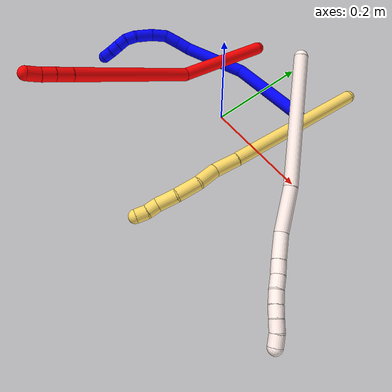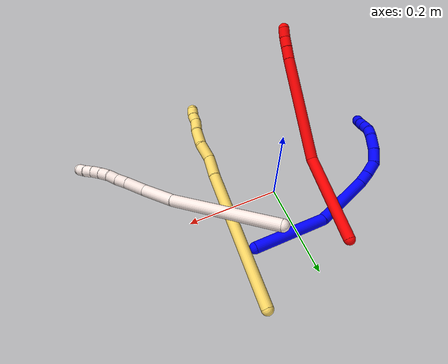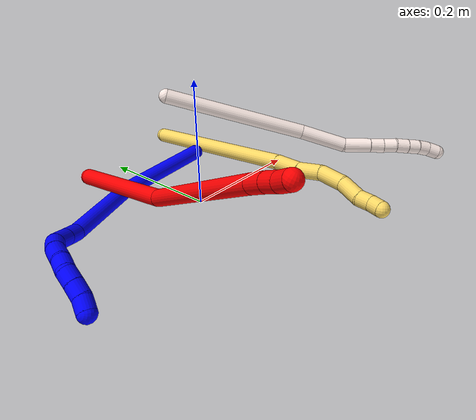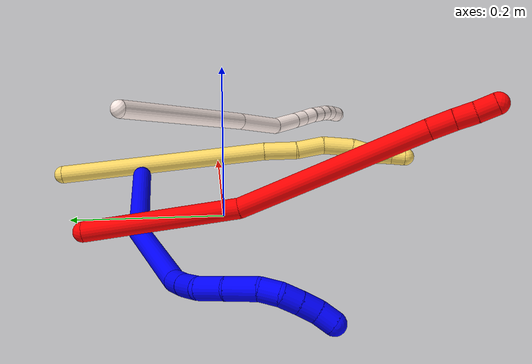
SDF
<sdf version="1.7">
 <world name="default">
  <model name="1">
   <static>0</static>
   <link name="1">
    <collision name="collision-cylinder-e_1_1_4">
     <pose>-0.038945 0.006561 0.07103 -0.092112 -0.499745 0.023523</pose>
     <geometry><cylinder><radius>0.0125</radius><length>0.162543</length></cylinder></geometry>
     <surface>
      <friction><ode><mu>1.16</mu><mu2>1.16</mu2><slip1>0</slip1><slip2>0</slip2></ode></friction>
      <contact><ode><kp>1e+06</kp><kd>1</kd><max_vel>0</max_vel><min_depth>0.001</min_depth></ode></contact>
     </surface>
    </collision>
    <visual name="visual-cylinder-e_1_1_4">
     <pose>-0.038945 0.006561 0.07103 -0.092112 -0.499745 0.023523</pose>
     <geometry><cylinder><radius>0.0125</radius><length>0.162543</length></cylinder></geometry>
     <material><ambient>0 0 1 1</ambient></material>
    </visual>
    <collision name="collision-cylinder-e_2_4_5">
     <pose>-0.108729 -0.003254 0.197471 0.287374 -0.490258 -0.072357</pose>
     <geometry><cylinder><radius>0.0125</radius><length>0.130991</length></cylinder></geometry>
     <surface>
      <friction><ode><mu>1.16</mu><mu2>1.16</mu2><slip1>0</slip1><slip2>0</slip2></ode></friction>
      <contact><ode><kp>1e+06</kp><kd>1</kd><max_vel>0</max_vel><min_depth>0.001</min_depth></ode></contact>
     </surface>
    </collision>
    <visual name="visual-cylinder-e_2_4_5">
     <pose>-0.108729 -0.003254 0.197471 0.287374 -0.490258 -0.072357</pose>
     <geometry><cylinder><radius>0.0125</radius><length>0.130991</length></cylinder></geometry>
     <material><ambient>0 0 1 1</ambient></material>
    </visual>
    <collision name="collision-cylinder-e_3_5_6">
     <pose>-0.1423 -0.024518 0.265011 0.382959 -0.205965 -0.040064</pose>
     <geometry><cylinder><radius>0.0125</radius><length>0.026717</length></cylinder></geometry>
     <surface>
      <friction><ode><mu>1.16</mu><mu2>1.16</mu2><slip1>0</slip1><slip2>0</slip2></ode></friction>
      <contact><ode><kp>1e+06</kp><kd>1</kd><max_vel>0</max_vel><min_depth>0.001</min_depth></ode></contact>
     </surface>
    </collision>
    <visual name="visual-cylinder-e_3_5_6">
     <pose>-0.1423 -0.024518 0.265011 0.382959 -0.205965 -0.040064</pose>
     <geometry><cylinder><radius>0.0125</radius><length>0.026717</length></cylinder></geometry>
     <material><ambient>0 0 1 1</ambient></material>
    </visual>
    <collision name="collision-cylinder-e_4_6_7">
     <pose>-0.147279 -0.036108 0.290389 0.468453 -0.150187 -0.035899</pose>
     <geometry><cylinder><radius>0.0125</radius><length>0.030035</length></cylinder></geometry>
     <surface>
      <friction><ode><mu>1.16</mu><mu2>1.16</mu2><slip1>0</slip1><slip2>0</slip2></ode></friction>
      <contact><ode><kp>1e+06</kp><kd>1</kd><max_vel>0</max_vel><min_depth>0.001</min_depth></ode></contact>
     </surface>
    </collision>
    <visual name="visual-cylinder-e_4_6_7">
     <pose>-0.147279 -0.036108 0.290389 0.468453 -0.150187 -0.035899</pose>
     <geometry><cylinder><radius>0.0125</radius><length>0.030035</length></cylinder></geometry>
     <material><ambient>0 0 1 1</ambient></material>
    </visual>
    <collision name="collision-cylinder-e_5_7_8">
     <pose>-0.152121 -0.055835 0.312439 0.976508 -0.163616 -0.087044</pose>
     <geometry><cylinder><radius>0.0125</radius><length>0.031861</length></cylinder></geometry>
     <surface>
      <friction><ode><mu>1.16</mu><mu2>1.16</mu2><slip1>0</slip1><slip2>0</slip2></ode></friction>
      <contact><ode><kp>1e+06</kp><kd>1</kd><max_vel>0</max_vel><min_depth>0.001</min_depth></ode></contact>
     </surface>
    </collision>
    <visual name="visual-cylinder-e_5_7_8">
     <pose>-0.152121 -0.055835 0.312439 0.976508 -0.163616 -0.087044</pose>
     <geometry><cylinder><radius>0.0125</radius><length>0.031861</length></cylinder></geometry>
     <material><ambient>0 0 1 1</ambient></material>
    </visual>
    <collision name="collision-cylinder-e_6_8_9">
     <pose>-0.158314 -0.084832 0.328299 1.15465 -0.20321 -0.132624</pose>
     <geometry><cylinder><radius>0.0125</radius><length>0.035663</length></cylinder></geometry>
     <surface>
      <friction><ode><mu>1.16</mu><mu2>1.16</mu2><slip1>0</slip1><slip2>0</slip2></ode></friction>
      <contact><ode><kp>1e+06</kp><kd>1</kd><max_vel>0</max_vel><min_depth>0.001</min_depth></ode></contact>
     </surface>
    </collision>
    <visual name="visual-cylinder-e_6_8_9">
     <pose>-0.158314 -0.084832 0.328299 1.15465 -0.20321 -0.132624</pose>
     <geometry><cylinder><radius>0.0125</radius><length>0.035663</length></cylinder></geometry>
     <material><ambient>0 0 1 1</ambient></material>
    </visual>
    <collision name="collision-cylinder-e_7_9_10">
     <pose>-0.166601 -0.110007 0.338268 1.26461 -0.452251 -0.333969</pose>
     <geometry><cylinder><radius>0.0125</radius><length>0.021456</length></cylinder></geometry>
     <surface>
      <friction><ode><mu>1.16</mu><mu2>1.16</mu2><slip1>0</slip1><slip2>0</slip2></ode></friction>
      <contact><ode><kp>1e+06</kp><kd>1</kd><max_vel>0</max_vel><min_depth>0.001</min_depth></ode></contact>
     </surface>
    </collision>
    <visual name="visual-cylinder-e_7_9_10">
     <pose>-0.166601 -0.110007 0.338268 1.26461 -0.452251 -0.333969</pose>
     <geometry><cylinder><radius>0.0125</radius><length>0.021456</length></cylinder></geometry>
     <material><ambient>0 0 1 1</ambient></material>
    </visual>
    <collision name="collision-cylinder-e_8_10_11">
     <pose>-0.177473 -0.12734 0.340641 1.63659 -0.649066 -0.689914</pose>
     <geometry><cylinder><radius>0.0125</radius><length>0.020461</length></cylinder></geometry>
     <surface>
      <friction><ode><mu>1.16</mu><mu2>1.16</mu2><slip1>0</slip1><slip2>0</slip2></ode></friction>
      <contact><ode><kp>1e+06</kp><kd>1</kd><max_vel>0</max_vel><min_depth>0.001</min_depth></ode></contact>
     </surface>
    </collision>
    <visual name="visual-cylinder-e_8_10_11">
     <pose>-0.177473 -0.12734 0.340641 1.63659 -0.649066 -0.689914</pose>
     <geometry><cylinder><radius>0.0125</radius><length>0.020461</length></cylinder></geometry>
     <material><ambient>0 0 1 1</ambient></material>
    </visual>
    <collision name="collision-cylinder-e_9_11_12">
     <pose>-0.190091 -0.143174 0.339535 1.64473 -0.694707 -0.74343</pose>
     <geometry><cylinder><radius>0.0125</radius><length>0.020104</length></cylinder></geometry>
     <surface>
      <friction><ode><mu>1.16</mu><mu2>1.16</mu2><slip1>0</slip1><slip2>0</slip2></ode></friction>
      <contact><ode><kp>1e+06</kp><kd>1</kd><max_vel>0</max_vel><min_depth>0.001</min_depth></ode></contact>
     </surface>
    </collision>
    <visual name="visual-cylinder-e_9_11_12">
     <pose>-0.190091 -0.143174 0.339535 1.64473 -0.694707 -0.74343</pose>
     <geometry><cylinder><radius>0.0125</radius><length>0.020104</length></cylinder></geometry>
     <material><ambient>0 0 1 1</ambient></material>
    </visual>
    <collision name="collision-cylinder-e_10_12_2">
     <pose>-0.204156 -0.157439 0.339591 1.47563 -0.858043 -0.788194</pose>
     <geometry><cylinder><radius>0.0125</radius><length>0.02017</length></cylinder></geometry>
     <surface>
      <friction><ode><mu>1.16</mu><mu2>1.16</mu2><slip1>0</slip1><slip2>0</slip2></ode></friction>
      <contact><ode><kp>1e+06</kp><kd>1</kd><max_vel>0</max_vel><min_depth>0.001</min_depth></ode></contact>
     </surface>
    </collision>
    <visual name="visual-cylinder-e_10_12_2">
     <pose>-0.204156 -0.157439 0.339591 1.47563 -0.858043 -0.788194</pose>
     <geometry><cylinder><radius>0.0125</radius><length>0.02017</length></cylinder></geometry>
     <material><ambient>0 0 1 1</ambient></material>
    </visual>
    <collision name="collision-sphere-2">
     <pose>-0.211786 -0.164004 0.340217 0 -0 0</pose>
     <geometry><sphere><radius>0.0125</radius></sphere></geometry>
     <surface>
      <friction><ode><mu>1.16</mu><mu2>1.16</mu2><slip1>0</slip1><slip2>0</slip2></ode></friction>
      <contact><ode><kp>1e+06</kp><kd>1</kd><max_vel>0</max_vel><min_depth>0.001</min_depth></ode></contact>
     </surface>
    </collision>
    <visual name="visual-sphere-2">
     <pose>-0.211786 -0.164004 0.340217 0 -0 0</pose>
     <geometry><sphere><radius>0.0125</radius></sphere></geometry>
     <material><ambient>0 0 1 1</ambient></material>
    </visual>
    <collision name="collision-sphere-12">
     <pose>-0.196526 -0.150875 0.338964 0 -0 0</pose>
     <geometry><sphere><radius>0.0125</radius></sphere></geometry>
     <surface>
      <friction><ode><mu>1.16</mu><mu2>1.16</mu2><slip1>0</slip1><slip2>0</slip2></ode></friction>
      <contact><ode><kp>1e+06</kp><kd>1</kd><max_vel>0</max_vel><min_depth>0.001</min_depth></ode></contact>
     </surface>
    </collision>
    <visual name="visual-sphere-12">
     <pose>-0.196526 -0.150875 0.338964 0 -0 0</pose>
     <geometry><sphere><radius>0.0125</radius></sphere></geometry>
     <material><ambient>0 0 1 1</ambient></material>
    </visual>
    <collision name="collision-sphere-11">
     <pose>-0.183657 -0.135472 0.340105 0 -0 0</pose>
     <geometry><sphere><radius>0.0125</radius></sphere></geometry>
     <surface>
      <friction><ode><mu>1.16</mu><mu2>1.16</mu2><slip1>0</slip1><slip2>0</slip2></ode></friction>
      <contact><ode><kp>1e+06</kp><kd>1</kd><max_vel>0</max_vel><min_depth>0.001</min_depth></ode></contact>
     </surface>
    </collision>
    <visual name="visual-sphere-11">
     <pose>-0.183657 -0.135472 0.340105 0 -0 0</pose>
     <geometry><sphere><radius>0.0125</radius></sphere></geometry>
     <material><ambient>0 0 1 1</ambient></material>
    </visual>
    <collision name="collision-sphere-10">
     <pose>-0.171289 -0.119208 0.341177 0 -0 0</pose>
     <geometry><sphere><radius>0.0125</radius></sphere></geometry>
     <surface>
      <friction><ode><mu>1.16</mu><mu2>1.16</mu2><slip1>0</slip1><slip2>0</slip2></ode></friction>
      <contact><ode><kp>1e+06</kp><kd>1</kd><max_vel>0</max_vel><min_depth>0.001</min_depth></ode></contact>
     </surface>
    </collision>
    <visual name="visual-sphere-10">
     <pose>-0.171289 -0.119208 0.341177 0 -0 0</pose>
     <geometry><sphere><radius>0.0125</radius></sphere></geometry>
     <material><ambient>0 0 1 1</ambient></material>
    </visual>
    <collision name="collision-sphere-9">
     <pose>-0.161913 -0.100806 0.335359 0 -0 0</pose>
     <geometry><sphere><radius>0.0125</radius></sphere></geometry>
     <surface>
      <friction><ode><mu>1.16</mu><mu2>1.16</mu2><slip1>0</slip1><slip2>0</slip2></ode></friction>
      <contact><ode><kp>1e+06</kp><kd>1</kd><max_vel>0</max_vel><min_depth>0.001</min_depth></ode></contact>
     </surface>
    </collision>
    <visual name="visual-sphere-9">
     <pose>-0.161913 -0.100806 0.335359 0 -0 0</pose>
     <geometry><sphere><radius>0.0125</radius></sphere></geometry>
     <material><ambient>0 0 1 1</ambient></material>
    </visual>
    <collision name="collision-sphere-4">
     <pose>-0.077891 0.013123 0.14206 0 -0 0</pose>
     <geometry><sphere><radius>0.0125</radius></sphere></geometry>
     <surface>
      <friction><ode><mu>1.16</mu><mu2>1.16</mu2><slip1>0</slip1><slip2>0</slip2></ode></friction>
      <contact><ode><kp>1e+06</kp><kd>1</kd><max_vel>0</max_vel><min_depth>0.001</min_depth></ode></contact>
     </surface>
    </collision>
    <visual name="visual-sphere-4">
     <pose>-0.077891 0.013123 0.14206 0 -0 0</pose>
     <geometry><sphere><radius>0.0125</radius></sphere></geometry>
     <material><ambient>0 0 1 1</ambient></material>
    </visual>
    <collision name="collision-sphere-1">
     <geometry><sphere><radius>0.0125</radius></sphere></geometry>
     <surface>
      <friction><ode><mu>1.16</mu><mu2>1.16</mu2><slip1>0</slip1><slip2>0</slip2></ode></friction>
      <contact><ode><kp>1e+06</kp><kd>1</kd><max_vel>0</max_vel><min_depth>0.001</min_depth></ode></contact>
     </surface>
    </collision>
    <visual name="visual-sphere-1">
     <geometry><sphere><radius>0.0125</radius></sphere></geometry>
     <material><ambient>0 0 1 1</ambient></material>
    </visual>
    <collision name="collision-sphere-8">
     <pose>-0.154716 -0.068858 0.321239 0 -0 0</pose>
     <geometry><sphere><radius>0.0125</radius></sphere></geometry>
     <surface>
      <friction><ode><mu>1.16</mu><mu2>1.16</mu2><slip1>0</slip1><slip2>0</slip2></ode></friction>
      <contact><ode><kp>1e+06</kp><kd>1</kd><max_vel>0</max_vel><min_depth>0.001</min_depth></ode></contact>
     </surface>
    </collision>
    <visual name="visual-sphere-8">
     <pose>-0.154716 -0.068858 0.321239 0 -0 0</pose>
     <geometry><sphere><radius>0.0125</radius></sphere></geometry>
     <material><ambient>0 0 1 1</ambient></material>
    </visual>
    <collision name="collision-sphere-5">
     <pose>-0.139568 -0.019632 0.252882 0 -0 0</pose>
     <geometry><sphere><radius>0.0125</radius></sphere></geometry>
     <surface>
      <friction><ode><mu>1.16</mu><mu2>1.16</mu2><slip1>0</slip1><slip2>0</slip2></ode></friction>
      <contact><ode><kp>1e+06</kp><kd>1</kd><max_vel>0</max_vel><min_depth>0.001</min_depth></ode></contact>
     </surface>
    </collision>
    <visual name="visual-sphere-5">
     <pose>-0.139568 -0.019632 0.252882 0 -0 0</pose>
     <geometry><sphere><radius>0.0125</radius></sphere></geometry>
     <material><ambient>0 0 1 1</ambient></material>
    </visual>
    <collision name="collision-sphere-6">
     <pose>-0.145032 -0.029404 0.27714 0 -0 0</pose>
     <geometry><sphere><radius>0.0125</radius></sphere></geometry>
     <surface>
      <friction><ode><mu>1.16</mu><mu2>1.16</mu2><slip1>0</slip1><slip2>0</slip2></ode></friction>
      <contact><ode><kp>1e+06</kp><kd>1</kd><max_vel>0</max_vel><min_depth>0.001</min_depth></ode></contact>
     </surface>
    </collision>
    <visual name="visual-sphere-6">
     <pose>-0.145032 -0.029404 0.27714 0 -0 0</pose>
     <geometry><sphere><radius>0.0125</radius></sphere></geometry>
     <material><ambient>0 0 1 1</ambient></material>
    </visual>
    <collision name="collision-sphere-7">
     <pose>-0.149526 -0.042812 0.303638 0 -0 0</pose>
     <geometry><sphere><radius>0.0125</radius></sphere></geometry>
     <surface>
      <friction><ode><mu>1.16</mu><mu2>1.16</mu2><slip1>0</slip1><slip2>0</slip2></ode></friction>
      <contact><ode><kp>1e+06</kp><kd>1</kd><max_vel>0</max_vel><min_depth>0.001</min_depth></ode></contact>
     </surface>
    </collision>
    <visual name="visual-sphere-7">
     <pose>-0.149526 -0.042812 0.303638 0 -0 0</pose>
     <geometry><sphere><radius>0.0125</radius></sphere></geometry>
     <material><ambient>0 0 1 1</ambient></material>
    </visual>
    <inertial>
     <pose>-0.108872 -0.033847 0.205561 0 -0 0</pose>
     <mass>0.5</mass>
     <inertia>
      <ixx>0.000482</ixx>
      <ixy>0</ixy>
      <ixz>0</ixz>
      <iyy>0.00054</iyy>
      <iyz>0</iyz>
      <izz>0.000332</izz>
     </inertia>
    </inertial>
   </link>
   <pose>0.099969 0.111506 0.01954 -0.379564 -1.07501 0.438994</pose>
  </model>
  <model name="2">
   <static>0</static>
   <link name="2">
    <collision name="collision-cylinder-e_1_1_4">
     <pose>0.003129 -0.086781 0.037399 1.16389 0.033098 0.021778</pose>
     <geometry><cylinder><radius>0.0125</radius><length>0.189097</length></cylinder></geometry>
     <surface>
      <friction><ode><mu>1.16</mu><mu2>1.16</mu2><slip1>0</slip1><slip2>0</slip2></ode></friction>
      <contact><ode><kp>1e+06</kp><kd>1</kd><max_vel>0</max_vel><min_depth>0.001</min_depth></ode></contact>
     </surface>
    </collision>
    <visual name="visual-cylinder-e_1_1_4">
     <pose>0.003129 -0.086781 0.037399 1.16389 0.033098 0.021778</pose>
     <geometry><cylinder><radius>0.0125</radius><length>0.189097</length></cylinder></geometry>
     <material><ambient>1 0 0 1</ambient></material>
    </visual>
    <collision name="collision-cylinder-e_2_4_5">
     <pose>-0.01474 -0.265392 0.144421 0.92209 -0.18023 -0.089712</pose>
     <geometry><cylinder><radius>0.0125</radius><length>0.234273</length></cylinder></geometry>
     <surface>
      <friction><ode><mu>1.16</mu><mu2>1.16</mu2><slip1>0</slip1><slip2>0</slip2></ode></friction>
      <contact><ode><kp>1e+06</kp><kd>1</kd><max_vel>0</max_vel><min_depth>0.001</min_depth></ode></contact>
     </surface>
    </collision>
    <visual name="visual-cylinder-e_2_4_5">
     <pose>-0.01474 -0.265392 0.144421 0.92209 -0.18023 -0.089712</pose>
     <geometry><cylinder><radius>0.0125</radius><length>0.234273</length></cylinder></geometry>
     <material><ambient>1 0 0 1</ambient></material>
    </visual>
    <collision name="collision-cylinder-e_3_5_6">
     <pose>-0.03885 -0.368869 0.222274 0.955575 -0.214936 -0.111609</pose>
     <geometry><cylinder><radius>0.0125</radius><length>0.029194</length></cylinder></geometry>
     <surface>
      <friction><ode><mu>1.16</mu><mu2>1.16</mu2><slip1>0</slip1><slip2>0</slip2></ode></friction>
      <contact><ode><kp>1e+06</kp><kd>1</kd><max_vel>0</max_vel><min_depth>0.001</min_depth></ode></contact>
     </surface>
    </collision>
    <visual name="visual-cylinder-e_3_5_6">
     <pose>-0.03885 -0.368869 0.222274 0.955575 -0.214936 -0.111609</pose>
     <geometry><cylinder><radius>0.0125</radius><length>0.029194</length></cylinder></geometry>
     <material><ambient>1 0 0 1</ambient></material>
    </visual>
    <collision name="collision-cylinder-e_4_6_7">
     <pose>-0.044381 -0.390292 0.236802 0.998625 -0.204908 -0.112034</pose>
     <geometry><cylinder><radius>0.0125</radius><length>0.023756</length></cylinder></geometry>
     <surface>
      <friction><ode><mu>1.16</mu><mu2>1.16</mu2><slip1>0</slip1><slip2>0</slip2></ode></friction>
      <contact><ode><kp>1e+06</kp><kd>1</kd><max_vel>0</max_vel><min_depth>0.001</min_depth></ode></contact>
     </surface>
    </collision>
    <visual name="visual-cylinder-e_4_6_7">
     <pose>-0.044381 -0.390292 0.236802 0.998625 -0.204908 -0.112034</pose>
     <geometry><cylinder><radius>0.0125</radius><length>0.023756</length></cylinder></geometry>
     <material><ambient>1 0 0 1</ambient></material>
    </visual>
    <collision name="collision-cylinder-e_5_7_2">
     <pose>-0.050156 -0.409156 0.249906 0.927859 -0.287612 -0.144655</pose>
     <geometry><cylinder><radius>0.0125</radius><length>0.02368</length></cylinder></geometry>
     <surface>
      <friction><ode><mu>1.16</mu><mu2>1.16</mu2><slip1>0</slip1><slip2>0</slip2></ode></friction>
      <contact><ode><kp>1e+06</kp><kd>1</kd><max_vel>0</max_vel><min_depth>0.001</min_depth></ode></contact>
     </surface>
    </collision>
    <visual name="visual-cylinder-e_5_7_2">
     <pose>-0.050156 -0.409156 0.249906 0.927859 -0.287612 -0.144655</pose>
     <geometry><cylinder><radius>0.0125</radius><length>0.02368</length></cylinder></geometry>
     <material><ambient>1 0 0 1</ambient></material>
    </visual>
    <collision name="collision-sphere-2">
     <pose>-0.053515 -0.418243 0.256713 0 -0 0</pose>
     <geometry><sphere><radius>0.0125</radius></sphere></geometry>
     <surface>
      <friction><ode><mu>1.16</mu><mu2>1.16</mu2><slip1>0</slip1><slip2>0</slip2></ode></friction>
      <contact><ode><kp>1e+06</kp><kd>1</kd><max_vel>0</max_vel><min_depth>0.001</min_depth></ode></contact>
     </surface>
    </collision>
    <visual name="visual-sphere-2">
     <pose>-0.053515 -0.418243 0.256713 0 -0 0</pose>
     <geometry><sphere><radius>0.0125</radius></sphere></geometry>
     <material><ambient>1 0 0 1</ambient></material>
    </visual>
    <collision name="collision-sphere-7">
     <pose>-0.046798 -0.40007 0.243099 0 -0 0</pose>
     <geometry><sphere><radius>0.0125</radius></sphere></geometry>
     <surface>
      <friction><ode><mu>1.16</mu><mu2>1.16</mu2><slip1>0</slip1><slip2>0</slip2></ode></friction>
      <contact><ode><kp>1e+06</kp><kd>1</kd><max_vel>0</max_vel><min_depth>0.001</min_depth></ode></contact>
     </surface>
    </collision>
    <visual name="visual-sphere-7">
     <pose>-0.046798 -0.40007 0.243099 0 -0 0</pose>
     <geometry><sphere><radius>0.0125</radius></sphere></geometry>
     <material><ambient>1 0 0 1</ambient></material>
    </visual>
    <collision name="collision-sphere-6">
     <pose>-0.041964 -0.380515 0.230505 0 -0 0</pose>
     <geometry><sphere><radius>0.0125</radius></sphere></geometry>
     <surface>
      <friction><ode><mu>1.16</mu><mu2>1.16</mu2><slip1>0</slip1><slip2>0</slip2></ode></friction>
      <contact><ode><kp>1e+06</kp><kd>1</kd><max_vel>0</max_vel><min_depth>0.001</min_depth></ode></contact>
     </surface>
    </collision>
    <visual name="visual-sphere-6">
     <pose>-0.041964 -0.380515 0.230505 0 -0 0</pose>
     <geometry><sphere><radius>0.0125</radius></sphere></geometry>
     <material><ambient>1 0 0 1</ambient></material>
    </visual>
    <collision name="collision-sphere-5">
     <pose>-0.035737 -0.357223 0.214043 0 -0 0</pose>
     <geometry><sphere><radius>0.0125</radius></sphere></geometry>
     <surface>
      <friction><ode><mu>1.16</mu><mu2>1.16</mu2><slip1>0</slip1><slip2>0</slip2></ode></friction>
      <contact><ode><kp>1e+06</kp><kd>1</kd><max_vel>0</max_vel><min_depth>0.001</min_depth></ode></contact>
     </surface>
    </collision>
    <visual name="visual-sphere-5">
     <pose>-0.035737 -0.357223 0.214043 0 -0 0</pose>
     <geometry><sphere><radius>0.0125</radius></sphere></geometry>
     <material><ambient>1 0 0 1</ambient></material>
    </visual>
    <collision name="collision-sphere-1">
     <geometry><sphere><radius>0.0125</radius></sphere></geometry>
     <surface>
      <friction><ode><mu>1.16</mu><mu2>1.16</mu2><slip1>0</slip1><slip2>0</slip2></ode></friction>
      <contact><ode><kp>1e+06</kp><kd>1</kd><max_vel>0</max_vel><min_depth>0.001</min_depth></ode></contact>
     </surface>
    </collision>
    <visual name="visual-sphere-1">
     <geometry><sphere><radius>0.0125</radius></sphere></geometry>
     <material><ambient>1 0 0 1</ambient></material>
    </visual>
    <collision name="collision-sphere-4">
     <pose>0.006258 -0.173562 0.074798 0 -0 0</pose>
     <geometry><sphere><radius>0.0125</radius></sphere></geometry>
     <surface>
      <friction><ode><mu>1.16</mu><mu2>1.16</mu2><slip1>0</slip1><slip2>0</slip2></ode></friction>
      <contact><ode><kp>1e+06</kp><kd>1</kd><max_vel>0</max_vel><min_depth>0.001</min_depth></ode></contact>
     </surface>
    </collision>
    <visual name="visual-sphere-4">
     <pose>0.006258 -0.173562 0.074798 0 -0 0</pose>
     <geometry><sphere><radius>0.0125</radius></sphere></geometry>
     <material><ambient>1 0 0 1</ambient></material>
    </visual>
    <inertial>
     <pose>-0.012475 -0.216627 0.117876 0 -0 0</pose>
     <mass>0.5</mass>
     <inertia>
      <ixx>0.001548</ixx>
      <ixy>0</ixy>
      <ixz>0</ixz>
      <iyy>0.000778</iyy>
      <iyz>0</iyz>
      <izz>0.001573</izz>
     </inertia>
    </inertial>
   </link>
   <pose>-0.08269 0.171013 0.023762 0.215011 0.399755 -0.177236</pose>
  </model>
  <model name="5">
   <static>0</static>
   <link name="5">
    <collision name="collision-cylinder-e_1_1_4">
     <pose>0.045417 -0.139723 0.002677 1.55164 0.314226 0.308358</pose>
     <geometry><cylinder><radius>0.0125</radius><length>0.293888</length></cylinder></geometry>
     <surface>
      <friction><ode><mu>1.16</mu><mu2>1.16</mu2><slip1>0</slip1><slip2>0</slip2></ode></friction>
      <contact><ode><kp>1e+06</kp><kd>1</kd><max_vel>0</max_vel><min_depth>0.001</min_depth></ode></contact>
     </surface>
    </collision>
    <visual name="visual-cylinder-e_1_1_4">
     <pose>0.045417 -0.139723 0.002677 1.55164 0.314226 0.308358</pose>
     <geometry><cylinder><radius>0.0125</radius><length>0.293888</length></cylinder></geometry>
     <material><ambient>1 0.858824 0.4 1</ambient></material>
    </visual>
    <collision name="collision-cylinder-e_2_4_5">
     <pose>0.099455 -0.301 0.007553 1.46914 0.378685 0.342771</pose>
     <geometry><cylinder><radius>0.0125</radius><length>0.046633</length></cylinder></geometry>
     <surface>
      <friction><ode><mu>1.16</mu><mu2>1.16</mu2><slip1>0</slip1><slip2>0</slip2></ode></friction>
      <contact><ode><kp>1e+06</kp><kd>1</kd><max_vel>0</max_vel><min_depth>0.001</min_depth></ode></contact>
     </surface>
    </collision>
    <visual name="visual-cylinder-e_2_4_5">
     <pose>0.099455 -0.301 0.007553 1.46914 0.378685 0.342771</pose>
     <geometry><cylinder><radius>0.0125</radius><length>0.046633</length></cylinder></geometry>
     <material><ambient>1 0.858824 0.4 1</ambient></material>
    </visual>
    <collision name="collision-cylinder-e_3_5_6">
     <pose>0.111518 -0.342045 0.008896 1.61462 0.174636 0.182421</pose>
     <geometry><cylinder><radius>0.0125</radius><length>0.039625</length></cylinder></geometry>
     <surface>
      <friction><ode><mu>1.16</mu><mu2>1.16</mu2><slip1>0</slip1><slip2>0</slip2></ode></friction>
      <contact><ode><kp>1e+06</kp><kd>1</kd><max_vel>0</max_vel><min_depth>0.001</min_depth></ode></contact>
     </surface>
    </collision>
    <visual name="visual-cylinder-e_3_5_6">
     <pose>0.111518 -0.342045 0.008896 1.61462 0.174636 0.182421</pose>
     <geometry><cylinder><radius>0.0125</radius><length>0.039625</length></cylinder></geometry>
     <material><ambient>1 0.858824 0.4 1</ambient></material>
    </visual>
    <collision name="collision-cylinder-e_4_6_7">
     <pose>0.122085 -0.381072 0.012417 1.35044 0.341957 0.274791</pose>
     <geometry><cylinder><radius>0.0125</radius><length>0.042499</length></cylinder></geometry>
     <surface>
      <friction><ode><mu>1.16</mu><mu2>1.16</mu2><slip1>0</slip1><slip2>0</slip2></ode></friction>
      <contact><ode><kp>1e+06</kp><kd>1</kd><max_vel>0</max_vel><min_depth>0.001</min_depth></ode></contact>
     </surface>
    </collision>
    <visual name="visual-cylinder-e_4_6_7">
     <pose>0.122085 -0.381072 0.012417 1.35044 0.341957 0.274791</pose>
     <geometry><cylinder><radius>0.0125</radius><length>0.042499</length></cylinder></geometry>
     <material><ambient>1 0.858824 0.4 1</ambient></material>
    </visual>
    <collision name="collision-cylinder-e_5_7_8">
     <pose>0.136669 -0.415341 0.024155 1.10746 0.425172 0.265327</pose>
     <geometry><cylinder><radius>0.0125</radius><length>0.036162</length></cylinder></geometry>
     <surface>
      <friction><ode><mu>1.16</mu><mu2>1.16</mu2><slip1>0</slip1><slip2>0</slip2></ode></friction>
      <contact><ode><kp>1e+06</kp><kd>1</kd><max_vel>0</max_vel><min_depth>0.001</min_depth></ode></contact>
     </surface>
    </collision>
    <visual name="visual-cylinder-e_5_7_8">
     <pose>0.136669 -0.415341 0.024155 1.10746 0.425172 0.265327</pose>
     <geometry><cylinder><radius>0.0125</radius><length>0.036162</length></cylinder></geometry>
     <material><ambient>1 0.858824 0.4 1</ambient></material>
    </visual>
    <collision name="collision-cylinder-e_6_8_9">
     <pose>0.146825 -0.440053 0.03344 1.38031 0.25956 0.214674</pose>
     <geometry><cylinder><radius>0.0125</radius><length>0.021027</length></cylinder></geometry>
     <surface>
      <friction><ode><mu>1.16</mu><mu2>1.16</mu2><slip1>0</slip1><slip2>0</slip2></ode></friction>
      <contact><ode><kp>1e+06</kp><kd>1</kd><max_vel>0</max_vel><min_depth>0.001</min_depth></ode></contact>
     </surface>
    </collision>
    <visual name="visual-cylinder-e_6_8_9">
     <pose>0.146825 -0.440053 0.03344 1.38031 0.25956 0.214674</pose>
     <geometry><cylinder><radius>0.0125</radius><length>0.021027</length></cylinder></geometry>
     <material><ambient>1 0.858824 0.4 1</ambient></material>
    </visual>
    <collision name="collision-cylinder-e_7_9_2">
     <pose>0.154347 -0.458673 0.037293 1.35125 0.49872 0.402666</pose>
     <geometry><cylinder><radius>0.0125</radius><length>0.020167</length></cylinder></geometry>
     <surface>
      <friction><ode><mu>1.16</mu><mu2>1.16</mu2><slip1>0</slip1><slip2>0</slip2></ode></friction>
      <contact><ode><kp>1e+06</kp><kd>1</kd><max_vel>0</max_vel><min_depth>0.001</min_depth></ode></contact>
     </surface>
    </collision>
    <visual name="visual-cylinder-e_7_9_2">
     <pose>0.154347 -0.458673 0.037293 1.35125 0.49872 0.402666</pose>
     <geometry><cylinder><radius>0.0125</radius><length>0.020167</length></cylinder></geometry>
     <material><ambient>1 0.858824 0.4 1</ambient></material>
    </visual>
    <collision name="collision-sphere-2">
     <pose>0.159169 -0.467316 0.039221 0 -0 0</pose>
     <geometry><sphere><radius>0.0125</radius></sphere></geometry>
     <surface>
      <friction><ode><mu>1.16</mu><mu2>1.16</mu2><slip1>0</slip1><slip2>0</slip2></ode></friction>
      <contact><ode><kp>1e+06</kp><kd>1</kd><max_vel>0</max_vel><min_depth>0.001</min_depth></ode></contact>
     </surface>
    </collision>
    <visual name="visual-sphere-2">
     <pose>0.159169 -0.467316 0.039221 0 -0 0</pose>
     <geometry><sphere><radius>0.0125</radius></sphere></geometry>
     <material><ambient>1 0.858824 0.4 1</ambient></material>
    </visual>
    <collision name="collision-sphere-9">
     <pose>0.149524 -0.450031 0.035364 0 -0 0</pose>
     <geometry><sphere><radius>0.0125</radius></sphere></geometry>
     <surface>
      <friction><ode><mu>1.16</mu><mu2>1.16</mu2><slip1>0</slip1><slip2>0</slip2></ode></friction>
      <contact><ode><kp>1e+06</kp><kd>1</kd><max_vel>0</max_vel><min_depth>0.001</min_depth></ode></contact>
     </surface>
    </collision>
    <visual name="visual-sphere-9">
     <pose>0.149524 -0.450031 0.035364 0 -0 0</pose>
     <geometry><sphere><radius>0.0125</radius></sphere></geometry>
     <material><ambient>1 0.858824 0.4 1</ambient></material>
    </visual>
    <collision name="collision-sphere-4">
     <pose>0.090835 -0.279447 0.005354 0 -0 0</pose>
     <geometry><sphere><radius>0.0125</radius></sphere></geometry>
     <surface>
      <friction><ode><mu>1.16</mu><mu2>1.16</mu2><slip1>0</slip1><slip2>0</slip2></ode></friction>
      <contact><ode><kp>1e+06</kp><kd>1</kd><max_vel>0</max_vel><min_depth>0.001</min_depth></ode></contact>
     </surface>
    </collision>
    <visual name="visual-sphere-4">
     <pose>0.090835 -0.279447 0.005354 0 -0 0</pose>
     <geometry><sphere><radius>0.0125</radius></sphere></geometry>
     <material><ambient>1 0.858824 0.4 1</ambient></material>
    </visual>
    <collision name="collision-sphere-1">
     <geometry><sphere><radius>0.0125</radius></sphere></geometry>
     <surface>
      <friction><ode><mu>1.16</mu><mu2>1.16</mu2><slip1>0</slip1><slip2>0</slip2></ode></friction>
      <contact><ode><kp>1e+06</kp><kd>1</kd><max_vel>0</max_vel><min_depth>0.001</min_depth></ode></contact>
     </surface>
    </collision>
    <visual name="visual-sphere-1">
     <geometry><sphere><radius>0.0125</radius></sphere></geometry>
     <material><ambient>1 0.858824 0.4 1</ambient></material>
    </visual>
    <collision name="collision-sphere-8">
     <pose>0.144127 -0.430075 0.031516 0 -0 0</pose>
     <geometry><sphere><radius>0.0125</radius></sphere></geometry>
     <surface>
      <friction><ode><mu>1.16</mu><mu2>1.16</mu2><slip1>0</slip1><slip2>0</slip2></ode></friction>
      <contact><ode><kp>1e+06</kp><kd>1</kd><max_vel>0</max_vel><min_depth>0.001</min_depth></ode></contact>
     </surface>
    </collision>
    <visual name="visual-sphere-8">
     <pose>0.144127 -0.430075 0.031516 0 -0 0</pose>
     <geometry><sphere><radius>0.0125</radius></sphere></geometry>
     <material><ambient>1 0.858824 0.4 1</ambient></material>
    </visual>
    <collision name="collision-sphere-5">
     <pose>0.108075 -0.322552 0.009751 0 -0 0</pose>
     <geometry><sphere><radius>0.0125</radius></sphere></geometry>
     <surface>
      <friction><ode><mu>1.16</mu><mu2>1.16</mu2><slip1>0</slip1><slip2>0</slip2></ode></friction>
      <contact><ode><kp>1e+06</kp><kd>1</kd><max_vel>0</max_vel><min_depth>0.001</min_depth></ode></contact>
     </surface>
    </collision>
    <visual name="visual-sphere-5">
     <pose>0.108075 -0.322552 0.009751 0 -0 0</pose>
     <geometry><sphere><radius>0.0125</radius></sphere></geometry>
     <material><ambient>1 0.858824 0.4 1</ambient></material>
    </visual>
    <collision name="collision-sphere-6">
     <pose>0.11496 -0.361537 0.008042 0 -0 0</pose>
     <geometry><sphere><radius>0.0125</radius></sphere></geometry>
     <surface>
      <friction><ode><mu>1.16</mu><mu2>1.16</mu2><slip1>0</slip1><slip2>0</slip2></ode></friction>
      <contact><ode><kp>1e+06</kp><kd>1</kd><max_vel>0</max_vel><min_depth>0.001</min_depth></ode></contact>
     </surface>
    </collision>
    <visual name="visual-sphere-6">
     <pose>0.11496 -0.361537 0.008042 0 -0 0</pose>
     <geometry><sphere><radius>0.0125</radius></sphere></geometry>
     <material><ambient>1 0.858824 0.4 1</ambient></material>
    </visual>
    <collision name="collision-sphere-7">
     <pose>0.129211 -0.400607 0.016793 0 -0 0</pose>
     <geometry><sphere><radius>0.0125</radius></sphere></geometry>
     <surface>
      <friction><ode><mu>1.16</mu><mu2>1.16</mu2><slip1>0</slip1><slip2>0</slip2></ode></friction>
      <contact><ode><kp>1e+06</kp><kd>1</kd><max_vel>0</max_vel><min_depth>0.001</min_depth></ode></contact>
     </surface>
    </collision>
    <visual name="visual-sphere-7">
     <pose>0.129211 -0.400607 0.016793 0 -0 0</pose>
     <geometry><sphere><radius>0.0125</radius></sphere></geometry>
     <material><ambient>1 0.858824 0.4 1</ambient></material>
    </visual>
    <inertial>
     <pose>0.07747 -0.236741 0.008696 0 -0 0</pose>
     <mass>0.5</mass>
     <inertia>
      <ixx>0.002592</ixx>
      <ixy>0</ixy>
      <ixz>0</ixz>
      <iyy>0.000833</iyy>
      <iyz>0</iyz>
      <izz>0.001388</izz>
     </inertia>
    </inertial>
   </link>
   <pose>0.129231 0.227329 0.012498 -3.09468 -0.282302 -2.88907</pose>
  </model>
  <model name="11">
   <static>0</static>
   <link name="11">
    <collision name="collision-cylinder-e_1_1_4">
     <pose>0.061016 -0.064861 0.083184 0.662257 0.524419 0.184016</pose>
     <geometry><cylinder><radius>0.0125</radius><length>0.243717</length></cylinder></geometry>
     <surface>
      <friction><ode><mu>1.16</mu><mu2>1.16</mu2><slip1>0</slip1><slip2>0</slip2></ode></friction>
      <contact><ode><kp>1e+06</kp><kd>1</kd><max_vel>0</max_vel><min_depth>0.001</min_depth></ode></contact>
     </surface>
    </collision>
    <visual name="visual-cylinder-e_1_1_4">
     <pose>0.061016 -0.064861 0.083184 0.662257 0.524419 0.184016</pose>
     <geometry><cylinder><radius>0.0125</radius><length>0.243717</length></cylinder></geometry>
     <material><ambient>1 0.933333 0.909804 1</ambient></material>
    </visual>
    <collision name="collision-cylinder-e_2_4_5">
     <pose>0.143709 -0.146849 0.195103 0.537503 0.574986 0.162513</pose>
     <geometry><cylinder><radius>0.0125</radius><length>0.079723</length></cylinder></geometry>
     <surface>
      <friction><ode><mu>1.16</mu><mu2>1.16</mu2><slip1>0</slip1><slip2>0</slip2></ode></friction>
      <contact><ode><kp>1e+06</kp><kd>1</kd><max_vel>0</max_vel><min_depth>0.001</min_depth></ode></contact>
     </surface>
    </collision>
    <visual name="visual-cylinder-e_2_4_5">
     <pose>0.143709 -0.146849 0.195103 0.537503 0.574986 0.162513</pose>
     <geometry><cylinder><radius>0.0125</radius><length>0.079723</length></cylinder></geometry>
     <material><ambient>1 0.933333 0.909804 1</ambient></material>
    </visual>
    <collision name="collision-cylinder-e_3_5_6">
     <pose>0.181615 -0.176141 0.23553 0.805198 0.765905 0.3398</pose>
     <geometry><cylinder><radius>0.0125</radius><length>0.046821</length></cylinder></geometry>
     <surface>
      <friction><ode><mu>1.16</mu><mu2>1.16</mu2><slip1>0</slip1><slip2>0</slip2></ode></friction>
      <contact><ode><kp>1e+06</kp><kd>1</kd><max_vel>0</max_vel><min_depth>0.001</min_depth></ode></contact>
     </surface>
    </collision>
    <visual name="visual-cylinder-e_3_5_6">
     <pose>0.181615 -0.176141 0.23553 0.805198 0.765905 0.3398</pose>
     <geometry><cylinder><radius>0.0125</radius><length>0.046821</length></cylinder></geometry>
     <material><ambient>1 0.933333 0.909804 1</ambient></material>
    </visual>
    <collision name="collision-cylinder-e_4_6_7">
     <pose>0.205989 -0.195213 0.253313 0.848145 0.724303 0.338808</pose>
     <geometry><cylinder><radius>0.0125</radius><length>0.024589</length></cylinder></geometry>
     <surface>
      <friction><ode><mu>1.16</mu><mu2>1.16</mu2><slip1>0</slip1><slip2>0</slip2></ode></friction>
      <contact><ode><kp>1e+06</kp><kd>1</kd><max_vel>0</max_vel><min_depth>0.001</min_depth></ode></contact>
     </surface>
    </collision>
    <visual name="visual-cylinder-e_4_6_7">
     <pose>0.205989 -0.195213 0.253313 0.848145 0.724303 0.338808</pose>
     <geometry><cylinder><radius>0.0125</radius><length>0.024589</length></cylinder></geometry>
     <material><ambient>1 0.933333 0.909804 1</ambient></material>
    </visual>
    <collision name="collision-cylinder-e_5_7_8">
     <pose>0.22255 -0.207789 0.264736 0.815962 0.824317 0.37354</pose>
     <geometry><cylinder><radius>0.0125</radius><length>0.022923</length></cylinder></geometry>
     <surface>
      <friction><ode><mu>1.16</mu><mu2>1.16</mu2><slip1>0</slip1><slip2>0</slip2></ode></friction>
      <contact><ode><kp>1e+06</kp><kd>1</kd><max_vel>0</max_vel><min_depth>0.001</min_depth></ode></contact>
     </surface>
    </collision>
    <visual name="visual-cylinder-e_5_7_8">
     <pose>0.22255 -0.207789 0.264736 0.815962 0.824317 0.37354</pose>
     <geometry><cylinder><radius>0.0125</radius><length>0.022923</length></cylinder></geometry>
     <material><ambient>1 0.933333 0.909804 1</ambient></material>
    </visual>
    <collision name="collision-cylinder-e_6_8_9">
     <pose>0.237485 -0.219818 0.276131 0.809385 0.638543 0.281329</pose>
     <geometry><cylinder><radius>0.0125</radius><length>0.021884</length></cylinder></geometry>
     <surface>
      <friction><ode><mu>1.16</mu><mu2>1.16</mu2><slip1>0</slip1><slip2>0</slip2></ode></friction>
      <contact><ode><kp>1e+06</kp><kd>1</kd><max_vel>0</max_vel><min_depth>0.001</min_depth></ode></contact>
     </surface>
    </collision>
    <visual name="visual-cylinder-e_6_8_9">
     <pose>0.237485 -0.219818 0.276131 0.809385 0.638543 0.281329</pose>
     <geometry><cylinder><radius>0.0125</radius><length>0.021884</length></cylinder></geometry>
     <material><ambient>1 0.933333 0.909804 1</ambient></material>
    </visual>
    <collision name="collision-cylinder-e_7_9_10">
     <pose>0.249722 -0.232511 0.287654 0.859252 0.599508 0.281339</pose>
     <geometry><cylinder><radius>0.0125</radius><length>0.020259</length></cylinder></geometry>
     <surface>
      <friction><ode><mu>1.16</mu><mu2>1.16</mu2><slip1>0</slip1><slip2>0</slip2></ode></friction>
      <contact><ode><kp>1e+06</kp><kd>1</kd><max_vel>0</max_vel><min_depth>0.001</min_depth></ode></contact>
     </surface>
    </collision>
    <visual name="visual-cylinder-e_7_9_10">
     <pose>0.249722 -0.232511 0.287654 0.859252 0.599508 0.281339</pose>
     <geometry><cylinder><radius>0.0125</radius><length>0.020259</length></cylinder></geometry>
     <material><ambient>1 0.933333 0.909804 1</ambient></material>
    </visual>
    <collision name="collision-cylinder-e_8_10_11">
     <pose>0.260063 -0.245319 0.299237 0.813319 0.478759 0.209447</pose>
     <geometry><cylinder><radius>0.0125</radius><length>0.020079</length></cylinder></geometry>
     <surface>
      <friction><ode><mu>1.16</mu><mu2>1.16</mu2><slip1>0</slip1><slip2>0</slip2></ode></friction>
      <contact><ode><kp>1e+06</kp><kd>1</kd><max_vel>0</max_vel><min_depth>0.001</min_depth></ode></contact>
     </surface>
    </collision>
    <visual name="visual-cylinder-e_8_10_11">
     <pose>0.260063 -0.245319 0.299237 0.813319 0.478759 0.209447</pose>
     <geometry><cylinder><radius>0.0125</radius><length>0.020079</length></cylinder></geometry>
     <material><ambient>1 0.933333 0.909804 1</ambient></material>
    </visual>
    <collision name="collision-cylinder-e_9_11_2">
     <pose>0.269516 -0.256577 0.312698 0.577658 0.503759 0.152637</pose>
     <geometry><cylinder><radius>0.0125</radius><length>0.020004</length></cylinder></geometry>
     <surface>
      <friction><ode><mu>1.16</mu><mu2>1.16</mu2><slip1>0</slip1><slip2>0</slip2></ode></friction>
      <contact><ode><kp>1e+06</kp><kd>1</kd><max_vel>0</max_vel><min_depth>0.001</min_depth></ode></contact>
     </surface>
    </collision>
    <visual name="visual-cylinder-e_9_11_2">
     <pose>0.269516 -0.256577 0.312698 0.577658 0.503759 0.152637</pose>
     <geometry><cylinder><radius>0.0125</radius><length>0.020004</length></cylinder></geometry>
     <material><ambient>1 0.933333 0.909804 1</ambient></material>
    </visual>
    <collision name="collision-sphere-2">
     <pose>0.274344 -0.261361 0.320036 0 -0 0</pose>
     <geometry><sphere><radius>0.0125</radius></sphere></geometry>
     <surface>
      <friction><ode><mu>1.16</mu><mu2>1.16</mu2><slip1>0</slip1><slip2>0</slip2></ode></friction>
      <contact><ode><kp>1e+06</kp><kd>1</kd><max_vel>0</max_vel><min_depth>0.001</min_depth></ode></contact>
     </surface>
    </collision>
    <visual name="visual-sphere-2">
     <pose>0.274344 -0.261361 0.320036 0 -0 0</pose>
     <geometry><sphere><radius>0.0125</radius></sphere></geometry>
     <material><ambient>1 0.933333 0.909804 1</ambient></material>
    </visual>
    <collision name="collision-sphere-11">
     <pose>0.264688 -0.251794 0.30536 0 -0 0</pose>
     <geometry><sphere><radius>0.0125</radius></sphere></geometry>
     <surface>
      <friction><ode><mu>1.16</mu><mu2>1.16</mu2><slip1>0</slip1><slip2>0</slip2></ode></friction>
      <contact><ode><kp>1e+06</kp><kd>1</kd><max_vel>0</max_vel><min_depth>0.001</min_depth></ode></contact>
     </surface>
    </collision>
    <visual name="visual-sphere-11">
     <pose>0.264688 -0.251794 0.30536 0 -0 0</pose>
     <geometry><sphere><radius>0.0125</radius></sphere></geometry>
     <material><ambient>1 0.933333 0.909804 1</ambient></material>
    </visual>
    <collision name="collision-sphere-10">
     <pose>0.255438 -0.238845 0.293115 0 -0 0</pose>
     <geometry><sphere><radius>0.0125</radius></sphere></geometry>
     <surface>
      <friction><ode><mu>1.16</mu><mu2>1.16</mu2><slip1>0</slip1><slip2>0</slip2></ode></friction>
      <contact><ode><kp>1e+06</kp><kd>1</kd><max_vel>0</max_vel><min_depth>0.001</min_depth></ode></contact>
     </surface>
    </collision>
    <visual name="visual-sphere-10">
     <pose>0.255438 -0.238845 0.293115 0 -0 0</pose>
     <geometry><sphere><radius>0.0125</radius></sphere></geometry>
     <material><ambient>1 0.933333 0.909804 1</ambient></material>
    </visual>
    <collision name="collision-sphere-9">
     <pose>0.244007 -0.226178 0.282193 0 -0 0</pose>
     <geometry><sphere><radius>0.0125</radius></sphere></geometry>
     <surface>
      <friction><ode><mu>1.16</mu><mu2>1.16</mu2><slip1>0</slip1><slip2>0</slip2></ode></friction>
      <contact><ode><kp>1e+06</kp><kd>1</kd><max_vel>0</max_vel><min_depth>0.001</min_depth></ode></contact>
     </surface>
    </collision>
    <visual name="visual-sphere-9">
     <pose>0.244007 -0.226178 0.282193 0 -0 0</pose>
     <geometry><sphere><radius>0.0125</radius></sphere></geometry>
     <material><ambient>1 0.933333 0.909804 1</ambient></material>
    </visual>
    <collision name="collision-sphere-4">
     <pose>0.122031 -0.129722 0.166368 0 -0 0</pose>
     <geometry><sphere><radius>0.0125</radius></sphere></geometry>
     <surface>
      <friction><ode><mu>1.16</mu><mu2>1.16</mu2><slip1>0</slip1><slip2>0</slip2></ode></friction>
      <contact><ode><kp>1e+06</kp><kd>1</kd><max_vel>0</max_vel><min_depth>0.001</min_depth></ode></contact>
     </surface>
    </collision>
    <visual name="visual-sphere-4">
     <pose>0.122031 -0.129722 0.166368 0 -0 0</pose>
     <geometry><sphere><radius>0.0125</radius></sphere></geometry>
     <material><ambient>1 0.933333 0.909804 1</ambient></material>
    </visual>
    <collision name="collision-sphere-1">
     <geometry><sphere><radius>0.0125</radius></sphere></geometry>
     <surface>
      <friction><ode><mu>1.16</mu><mu2>1.16</mu2><slip1>0</slip1><slip2>0</slip2></ode></friction>
      <contact><ode><kp>1e+06</kp><kd>1</kd><max_vel>0</max_vel><min_depth>0.001</min_depth></ode></contact>
     </surface>
    </collision>
    <visual name="visual-sphere-1">
     <geometry><sphere><radius>0.0125</radius></sphere></geometry>
     <material><ambient>1 0.933333 0.909804 1</ambient></material>
    </visual>
    <collision name="collision-sphere-8">
     <pose>0.230963 -0.213458 0.270069 0 -0 0</pose>
     <geometry><sphere><radius>0.0125</radius></sphere></geometry>
     <surface>
      <friction><ode><mu>1.16</mu><mu2>1.16</mu2><slip1>0</slip1><slip2>0</slip2></ode></friction>
      <contact><ode><kp>1e+06</kp><kd>1</kd><max_vel>0</max_vel><min_depth>0.001</min_depth></ode></contact>
     </surface>
    </collision>
    <visual name="visual-sphere-8">
     <pose>0.230963 -0.213458 0.270069 0 -0 0</pose>
     <geometry><sphere><radius>0.0125</radius></sphere></geometry>
     <material><ambient>1 0.933333 0.909804 1</ambient></material>
    </visual>
    <collision name="collision-sphere-5">
     <pose>0.165387 -0.163976 0.223838 0 -0 0</pose>
     <geometry><sphere><radius>0.0125</radius></sphere></geometry>
     <surface>
      <friction><ode><mu>1.16</mu><mu2>1.16</mu2><slip1>0</slip1><slip2>0</slip2></ode></friction>
      <contact><ode><kp>1e+06</kp><kd>1</kd><max_vel>0</max_vel><min_depth>0.001</min_depth></ode></contact>
     </surface>
    </collision>
    <visual name="visual-sphere-5">
     <pose>0.165387 -0.163976 0.223838 0 -0 0</pose>
     <geometry><sphere><radius>0.0125</radius></sphere></geometry>
     <material><ambient>1 0.933333 0.909804 1</ambient></material>
    </visual>
    <collision name="collision-sphere-6">
     <pose>0.197843 -0.188306 0.247223 0 -0 0</pose>
     <geometry><sphere><radius>0.0125</radius></sphere></geometry>
     <surface>
      <friction><ode><mu>1.16</mu><mu2>1.16</mu2><slip1>0</slip1><slip2>0</slip2></ode></friction>
      <contact><ode><kp>1e+06</kp><kd>1</kd><max_vel>0</max_vel><min_depth>0.001</min_depth></ode></contact>
     </surface>
    </collision>
    <visual name="visual-sphere-6">
     <pose>0.197843 -0.188306 0.247223 0 -0 0</pose>
     <geometry><sphere><radius>0.0125</radius></sphere></geometry>
     <material><ambient>1 0.933333 0.909804 1</ambient></material>
    </visual>
    <collision name="collision-sphere-7">
     <pose>0.214136 -0.20212 0.259403 0 -0 0</pose>
     <geometry><sphere><radius>0.0125</radius></sphere></geometry>
     <surface>
      <friction><ode><mu>1.16</mu><mu2>1.16</mu2><slip1>0</slip1><slip2>0</slip2></ode></friction>
      <contact><ode><kp>1e+06</kp><kd>1</kd><max_vel>0</max_vel><min_depth>0.001</min_depth></ode></contact>
     </surface>
    </collision>
    <visual name="visual-sphere-7">
     <pose>0.214136 -0.20212 0.259403 0 -0 0</pose>
     <geometry><sphere><radius>0.0125</radius></sphere></geometry>
     <material><ambient>1 0.933333 0.909804 1</ambient></material>
    </visual>
    <inertial>
     <pose>0.131734 -0.12981 0.166574 0 -0 0</pose>
     <mass>0.5</mass>
     <inertia>
      <ixx>0.001312</ixx>
      <ixy>0</ixy>
      <ixz>0</ixz>
      <iyy>0.001251</iyy>
      <iyz>0</iyz>
      <izz>5.6e-05</izz>
     </inertia>
    </inertial>
   </link>
   <pose>0.061346 0.133164 0.130996 3.11208 -0.590218 -1.37917</pose>
  </model>
 </world>
</sdf>
